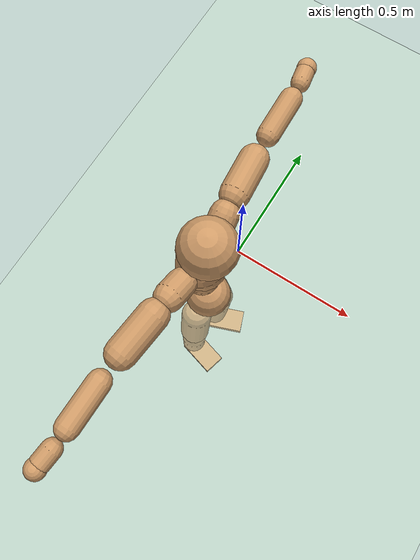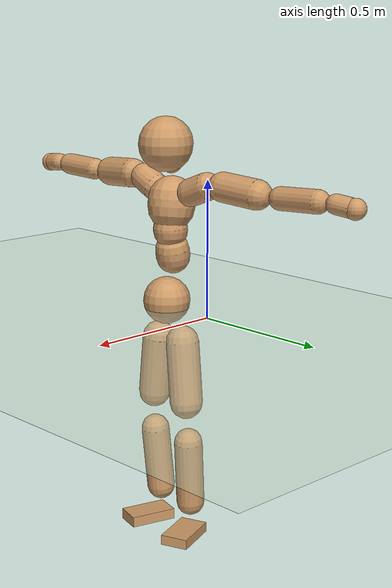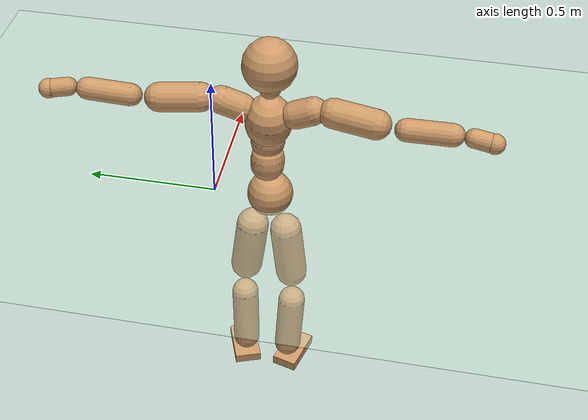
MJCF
<mujoco model="humanoid">
  <compiler coordinate="local"/>
  <default>
    <joint damping="0.0" armature="0.01" stiffness="0.0" limited="true"/>
    <geom conaffinity="1" condim="3" contype="7" margin="0.001" rgba="0.8 0.6 .4 1"/>
  </default>
  <asset>
    <texture type="skybox" builtin="gradient" rgb1=".4 .5 .6" rgb2="0 0 0" width="100" height="100"/>
    <texture builtin="flat" height="1278" mark="cross" markrgb="1 1 1" name="texgeom" random="0.01" rgb1="0.8 0.6 0.4" rgb2="0.8 0.6 0.4" type="cube" width="127"/>
    <texture builtin="checker" height="100" name="texplane" rgb1="0 0 0" rgb2="0.8 0.8 0.8" type="2d" width="100"/>
    <material name="MatPlane" reflectance="0.5" shininess="1" specular="1" texrepeat="60 60" texture="texplane"/>
    <material name="geom" texture="texgeom" texuniform="true"/>
  </asset>
  <worldbody>
    <light cutoff="100" diffuse="1 1 1" dir="-0 0 -1.3" directional="true" exponent="1" pos="0 0 1.3" specular=".1 .1 .1"/>
    <geom conaffinity="1" condim="3" name="floor" pos="0 0 0" rgba="0.8 0.9 0.8 1" size="100 100 .2" type="plane" material="MatPlane"/>
    <body name="Pelvis" pos="-0.0037 -0.2189 0.0272">
      <freejoint name="Pelvis"/>
      <geom type="sphere" contype="1" conaffinity="1" density="500" size="0.0880" pos="0.0000 0.0000 0.0000" name="Pelvis"/>
      <body name="L_Hip" pos="-0.0207 0.056 -0.0765">
        <joint name="L_Hip_x" type="hinge" pos="0 0 0" axis="1 0 0" stiffness="800" damping="80" armature="0.02" range="-180.0000 180.0000"/>
        <joint name="L_Hip_y" type="hinge" pos="0 0 0" axis="0 1 0" stiffness="800" damping="80" armature="0.02" range="-180.0000 180.0000"/>
        <joint name="L_Hip_z" type="hinge" pos="0 0 0" axis="0 0 1" stiffness="800" damping="80" armature="0.02" range="-180.0000 180.0000"/>
        <geom type="capsule" contype="1" conaffinity="1" density="500" fromto="0.0025 0.0095 -0.0766 0.0102 0.0381 -0.3065" size="0.0621" name="L_Hip"/>
        <body name="L_Knee" pos="0.0127 0.0477 -0.3831">
          <joint name="L_Knee_x" type="hinge" pos="0 0 0" axis="1 0 0" stiffness="800" damping="80" armature="0.02" range="-180.0000 180.0000"/>
          <joint name="L_Knee_y" type="hinge" pos="0 0 0" axis="0 1 0" stiffness="800" damping="80" armature="0.02" range="-180.0000 180.0000"/>
          <joint name="L_Knee_z" type="hinge" pos="0 0 0" axis="0 0 1" stiffness="800" damping="80" armature="0.02" range="-180.0000 180.0000"/>
          <geom type="capsule" contype="1" conaffinity="1" density="500" fromto="-0.0066 -0.0026 -0.0837 -0.0263 -0.0106 -0.3348" size="0.0535" name="L_Knee"/>
          <body name="L_Ankle" pos="-0.0328 -0.0132 -0.4185">
            <joint name="L_Ankle_x" type="hinge" pos="0 0 0" axis="1 0 0" stiffness="800" damping="80" armature="0.02" range="-180.0000 180.0000"/>
            <joint name="L_Ankle_y" type="hinge" pos="0 0 0" axis="0 1 0" stiffness="800" damping="80" armature="0.02" range="-180.0000 180.0000"/>
            <joint name="L_Ankle_z" type="hinge" pos="0 0 0" axis="0 0 1" stiffness="800" damping="80" armature="0.02" range="-180.0000 180.0000"/>
            <geom type="box" contype="1" conaffinity="1" density="500" pos="0.0596 0.0223 -0.0298" size="0.0889 0.0532 0.0192" quat="0.9840 0.0000 0.0000 0.1782" name="L_Ankle"/>
            <body name="L_Toe" pos="0.1192 0.0446 -0.0596">
              <joint name="L_Toe_x" type="hinge" pos="0 0 0" axis="1 0 0" stiffness="500" damping="50" armature="0.02" range="-180.0000 180.0000"/>
              <joint name="L_Toe_y" type="hinge" pos="0 0 0" axis="0 1 0" stiffness="500" damping="50" armature="0.02" range="-180.0000 180.0000"/>
              <joint name="L_Toe_z" type="hinge" pos="0 0 0" axis="0 0 1" stiffness="500" damping="50" armature="0.02" range="-180.0000 180.0000"/>
              <geom type="box" contype="1" conaffinity="1" density="500" pos="0.0000 0.0000 0.0292" size="0.001 0.0026 0.0009" quat="0.9832 0.0000 0.0000 0.1827" name="L_Toe"/>
            </body>
          </body>
        </body>
      </body>
      <body name="R_Hip" pos="-0.018 -0.0567 -0.0832">
        <joint name="R_Hip_x" type="hinge" pos="0 0 0" axis="1 0 0" stiffness="800" damping="80" armature="0.02" range="-180.0000 180.0000"/>
        <joint name="R_Hip_y" type="hinge" pos="0 0 0" axis="0 1 0" stiffness="800" damping="80" armature="0.02" range="-180.0000 180.0000"/>
        <joint name="R_Hip_z" type="hinge" pos="0 0 0" axis="0 0 1" stiffness="800" damping="80" armature="0.02" range="-180.0000 180.0000"/>
        <geom type="capsule" contype="1" conaffinity="1" density="500" fromto="-0.0003 -0.0088 -0.0751 -0.0013 -0.0350 -0.3005" size="0.061" name="R_Hip"/>
        <body name="R_Knee" pos="-0.0016 -0.0438 -0.3756">
          <joint name="R_Knee_x" type="hinge" pos="0 0 0" axis="1 0 0" stiffness="800" damping="80" armature="0.02" range="-180.0000 180.0000"/>
          <joint name="R_Knee_y" type="hinge" pos="0 0 0" axis="0 1 0" stiffness="800" damping="80" armature="0.02" range="-180.0000 180.0000"/>
          <joint name="R_Knee_z" type="hinge" pos="0 0 0" axis="0 0 1" stiffness="800" damping="80" armature="0.02" range="-180.0000 180.0000"/>
          <geom type="capsule" contype="1" conaffinity="1" density="500" fromto="-0.0063 0.0035 -0.0818 -0.0252 0.0141 -0.3270" size="0.0539" name="R_Knee"/>
          <body name="R_Ankle" pos="-0.0315 0.0177 -0.4088">
            <joint name="R_Ankle_x" type="hinge" pos="0 0 0" axis="1 0 0" stiffness="800" damping="80" armature="0.02" range="-180.0000 180.0000"/>
            <joint name="R_Ankle_y" type="hinge" pos="0 0 0" axis="0 1 0" stiffness="800" damping="80" armature="0.02" range="-180.0000 180.0000"/>
            <joint name="R_Ankle_z" type="hinge" pos="0 0 0" axis="0 0 1" stiffness="800" damping="80" armature="0.02" range="-180.0000 180.0000"/>
            <geom type="box" contype="1" conaffinity="1" density="500" pos="0.0642 -0.0175 -0.0296" size="0.0904 0.0501 0.0204" quat="0.9912 0.0000 0.0000 -0.1324" name="R_Ankle"/>
            <body name="R_Toe" pos="0.1283 -0.0349 -0.0592">
              <joint name="R_Toe_x" type="hinge" pos="0 0 0" axis="1 0 0" stiffness="500" damping="50" armature="0.02" range="-180.0000 180.0000"/>
              <joint name="R_Toe_y" type="hinge" pos="0 0 0" axis="0 1 0" stiffness="500" damping="50" armature="0.02" range="-180.0000 180.0000"/>
              <joint name="R_Toe_z" type="hinge" pos="0 0 0" axis="0 0 1" stiffness="500" damping="50" armature="0.02" range="-180.0000 180.0000"/>
              <geom type="box" contype="1" conaffinity="1" density="500" pos="0.0000 0.0000 0.0301" size="0.0009 0.0025 0.001" quat="0.9924 0.0000 0.0000 -0.1234" name="R_Toe"/>
            </body>
          </body>
        </body>
      </body>
      <body name="Torso" pos="-0.0371 0.0039 0.1119">
        <joint name="Torso_x" type="hinge" pos="0 0 0" axis="1 0 0" stiffness="1000" damping="100" armature="0.02" range="-180.0000 180.0000"/>
        <joint name="Torso_y" type="hinge" pos="0 0 0" axis="0 1 0" stiffness="1000" damping="100" armature="0.02" range="-180.0000 180.0000"/>
        <joint name="Torso_z" type="hinge" pos="0 0 0" axis="0 0 1" stiffness="1000" damping="100" armature="0.02" range="-180.0000 180.0000"/>
        <geom type="capsule" contype="1" conaffinity="1" density="500" fromto="0.0136 0.0021 0.0770 0.0091 0.0014 0.0514" size="0.063333" name="Torso"/>
        <body name="Spine" pos="0.0227 0.0035 0.1284">
          <joint name="Spine_x" type="hinge" pos="0 0 0" axis="1 0 0" stiffness="1000" damping="100" armature="0.02" range="-180.0000 180.0000"/>
          <joint name="Spine_y" type="hinge" pos="0 0 0" axis="0 1 0" stiffness="1000" damping="100" armature="0.02" range="-180.0000 180.0000"/>
          <joint name="Spine_z" type="hinge" pos="0 0 0" axis="0 0 1" stiffness="1000" damping="100" armature="0.02" range="-180.0000 180.0000"/>
          <geom type="capsule" contype="1" conaffinity="1" density="500" fromto="0.0010 -0.0006 0.0316 0.0007 -0.0004 0.0211" size="0.063705" name="Spine"/>
          <body name="Chest" pos="0.0016 -0.001 0.0527">
            <joint name="Chest_x" type="hinge" pos="0 0 0" axis="1 0 0" stiffness="1000" damping="100" armature="0.02" range="-180.0000 180.0000"/>
            <joint name="Chest_y" type="hinge" pos="0 0 0" axis="0 1 0" stiffness="1000" damping="100" armature="0.02" range="-180.0000 180.0000"/>
            <joint name="Chest_z" type="hinge" pos="0 0 0" axis="0 0 1" stiffness="1000" damping="100" armature="0.02" range="-180.0000 180.0000"/>
            <geom type="capsule" contype="1" conaffinity="1" density="500" fromto="-0.0116 -0.0044 0.0825 -0.0078 -0.0030 0.0550" size="0.087141" name="Chest"/>
            <body name="Neck" pos="-0.0257 -0.0125 0.1991">
              <joint name="Neck_x" type="hinge" pos="0 0 0" axis="1 0 0" stiffness="500" damping="50" armature="0.02" range="-180.0000 180.0000"/>
              <joint name="Neck_y" type="hinge" pos="0 0 0" axis="0 1 0" stiffness="500" damping="50" armature="0.02" range="-180.0000 180.0000"/>
              <joint name="Neck_z" type="hinge" pos="0 0 0" axis="0 0 1" stiffness="500" damping="50" armature="0.02" range="-180.0000 180.0000"/>
              <geom type="capsule" contype="1" conaffinity="1" density="500" fromto="0.0090 0.0023 0.0174 0.0360 0.0092 0.0697" size="0.039897" name="Neck"/>
              <body name="Head" pos="0.045 0.0115 0.0871">
                <joint name="Head_x" type="hinge" pos="0 0 0" axis="1 0 0" stiffness="500" damping="50" armature="0.02" range="-180.0000 180.0000"/>
                <joint name="Head_y" type="hinge" pos="0 0 0" axis="0 1 0" stiffness="500" damping="50" armature="0.02" range="-180.0000 180.0000"/>
                <joint name="Head_z" type="hinge" pos="0 0 0" axis="0 0 1" stiffness="500" damping="50" armature="0.02" range="-180.0000 180.0000"/>
                <geom type="sphere" contype="1" conaffinity="1" density="500" size="0.1000" pos="0.0000 0.0000 0.0000" name="Head"/>
              </body>
            </body>
            <body name="L_Thorax" pos="-0.0126 0.0688 0.1081">
              <joint name="L_Thorax_x" type="hinge" pos="0 0 0" axis="1 0 0" stiffness="500" damping="50" armature="0.02" range="-180.0000 180.0000"/>
              <joint name="L_Thorax_y" type="hinge" pos="0 0 0" axis="0 1 0" stiffness="500" damping="50" armature="0.02" range="-180.0000 180.0000"/>
              <joint name="L_Thorax_z" type="hinge" pos="0 0 0" axis="0 0 1" stiffness="500" damping="50" armature="0.02" range="-180.0000 180.0000"/>
              <geom type="capsule" contype="1" conaffinity="1" density="500" fromto="-0.0029 0.0241 0.0096 -0.0116 0.0965 0.0385" size="0.0514" name="L_Thorax"/>
              <body name="L_Shoulder" pos="-0.0145 0.1207 0.0482">
                <joint name="L_Shoulder_x" type="hinge" pos="0 0 0" axis="1 0 0" stiffness="500" damping="50" armature="0.02" range="-720.0000 720.0000"/>
                <joint name="L_Shoulder_y" type="hinge" pos="0 0 0" axis="0 1 0" stiffness="500" damping="50" armature="0.02" range="-720.0000 720.0000"/>
                <joint name="L_Shoulder_z" type="hinge" pos="0 0 0" axis="0 0 1" stiffness="500" damping="50" armature="0.02" range="-720.0000 720.0000"/>
                <geom type="capsule" contype="1" conaffinity="1" density="500" fromto="-0.0048 0.0497 -0.0035 -0.0191 0.1987 -0.0142" size="0.054" name="L_Shoulder"/>
                <body name="L_Elbow" pos="-0.0239 0.2483 -0.0177">
                  <joint name="L_Elbow_x" type="hinge" pos="0 0 0" axis="1 0 0" stiffness="500" damping="50" armature="0.02" range="-720.0000 720.0000"/>
                  <joint name="L_Elbow_y" type="hinge" pos="0 0 0" axis="0 1 0" stiffness="500" damping="50" armature="0.02" range="-720.0000 720.0000"/>
                  <joint name="L_Elbow_z" type="hinge" pos="0 0 0" axis="0 0 1" stiffness="500" damping="50" armature="0.02" range="-720.0000 720.0000"/>
                  <geom type="capsule" contype="1" conaffinity="1" density="500" fromto="-0.0011 0.0536 0.0028 -0.0045 0.2143 0.0113" size="0.0413" name="L_Elbow"/>
                  <body name="L_Wrist" pos="-0.0057 0.2679 0.0142">
                    <joint name="L_Wrist_x" type="hinge" pos="0 0 0" axis="1 0 0" stiffness="300" damping="30" armature="0.02" range="-180.0000 180.0000"/>
                    <joint name="L_Wrist_y" type="hinge" pos="0 0 0" axis="0 1 0" stiffness="300" damping="30" armature="0.02" range="-180.0000 180.0000"/>
                    <joint name="L_Wrist_z" type="hinge" pos="0 0 0" axis="0 0 1" stiffness="300" damping="30" armature="0.02" range="-180.0000 180.0000"/>
                    <geom type="capsule" contype="1" conaffinity="1" density="500" fromto="-0.0032 0.0178 -0.0022 -0.0130 0.0712 -0.0089" size="0.0344" name="L_Wrist"/>
                    <body name="L_Hand" pos="-0.0162 0.089 -0.0111">
                      <joint name="L_Hand_x" type="hinge" pos="0 0 0" axis="1 0 0" stiffness="300" damping="30" armature="0.02" range="-180.0000 180.0000"/>
                      <joint name="L_Hand_y" type="hinge" pos="0 0 0" axis="0 1 0" stiffness="300" damping="30" armature="0.02" range="-180.0000 180.0000"/>
                      <joint name="L_Hand_z" type="hinge" pos="0 0 0" axis="0 0 1" stiffness="300" damping="30" armature="0.02" range="-180.0000 180.0000"/>
                      <geom type="sphere" contype="1" conaffinity="1" density="500" size="0.0363" pos="0.0000 0.0000 0.0000" name="L_Hand"/>
                    </body>
                  </body>
                </body>
              </body>
            </body>
            <body name="R_Thorax" pos="-0.02 -0.0786 0.1051">
              <joint name="R_Thorax_x" type="hinge" pos="0 0 0" axis="1 0 0" stiffness="500" damping="50" armature="0.02" range="-180.0000 180.0000"/>
              <joint name="R_Thorax_y" type="hinge" pos="0 0 0" axis="0 1 0" stiffness="500" damping="50" armature="0.02" range="-180.0000 180.0000"/>
              <joint name="R_Thorax_z" type="hinge" pos="0 0 0" axis="0 0 1" stiffness="500" damping="50" armature="0.02" range="-180.0000 180.0000"/>
              <geom type="capsule" contype="1" conaffinity="1" density="500" fromto="-0.0012 -0.0222 0.0100 -0.0049 -0.0886 0.0402" size="0.0515" name="R_Thorax"/>
              <body name="R_Shoulder" pos="-0.0062 -0.1108 0.0502">
                <joint name="R_Shoulder_x" type="hinge" pos="0 0 0" axis="1 0 0" stiffness="500" damping="50" armature="0.02" range="-720.0000 720.0000"/>
                <joint name="R_Shoulder_y" type="hinge" pos="0 0 0" axis="0 1 0" stiffness="500" damping="50" armature="0.02" range="-720.0000 720.0000"/>
                <joint name="R_Shoulder_z" type="hinge" pos="0 0 0" axis="0 0 1" stiffness="500" damping="50" armature="0.02" range="-720.0000 720.0000"/>
                <geom type="capsule" contype="1" conaffinity="1" density="500" fromto="-0.0064 -0.0511 -0.0039 -0.0255 -0.2042 -0.0154" size="0.0547" name="R_Shoulder"/>
                <body name="R_Elbow" pos="-0.0318 -0.2553 -0.0193">
                  <joint name="R_Elbow_x" type="hinge" pos="0 0 0" axis="1 0 0" stiffness="500" damping="50" armature="0.02" range="-720.0000 720.0000"/>
                  <joint name="R_Elbow_y" type="hinge" pos="0 0 0" axis="0 1 0" stiffness="500" damping="50" armature="0.02" range="-720.0000 720.0000"/>
                  <joint name="R_Elbow_z" type="hinge" pos="0 0 0" axis="0 0 1" stiffness="500" damping="50" armature="0.02" range="-720.0000 720.0000"/>
                  <geom type="capsule" contype="1" conaffinity="1" density="500" fromto="-0.0006 -0.0539 0.0012 -0.0025 -0.2154 0.0048" size="0.0414" name="R_Elbow"/>
                  <body name="R_Wrist" pos="-0.0031 -0.2693 0.006">
                    <joint name="R_Wrist_x" type="hinge" pos="0 0 0" axis="1 0 0" stiffness="300" damping="30" armature="0.02" range="-180.0000 180.0000"/>
                    <joint name="R_Wrist_y" type="hinge" pos="0 0 0" axis="0 1 0" stiffness="300" damping="30" armature="0.02" range="-180.0000 180.0000"/>
                    <joint name="R_Wrist_z" type="hinge" pos="0 0 0" axis="0 0 1" stiffness="300" damping="30" armature="0.02" range="-180.0000 180.0000"/>
                    <geom type="capsule" contype="1" conaffinity="1" density="500" fromto="-0.0021 -0.0180 -0.0018 -0.0086 -0.0718 -0.0071" size="0.0345" name="R_Wrist"/>
                    <body name="R_Hand" pos="-0.0107 -0.0898 -0.0089">
                      <joint name="R_Hand_x" type="hinge" pos="0 0 0" axis="1 0 0" stiffness="300" damping="30" armature="0.02" range="-180.0000 180.0000"/>
                      <joint name="R_Hand_y" type="hinge" pos="0 0 0" axis="0 1 0" stiffness="300" damping="30" armature="0.02" range="-180.0000 180.0000"/>
                      <joint name="R_Hand_z" type="hinge" pos="0 0 0" axis="0 0 1" stiffness="300" damping="30" armature="0.02" range="-180.0000 180.0000"/>
                      <geom type="sphere" contype="1" conaffinity="1" density="500" size="0.0363" pos="0.0000 0.0000 0.0000" name="R_Hand"/>
                    </body>
                  </body>
                </body>
              </body>
            </body>
          </body>
        </body>
      </body>
    </body>
  </worldbody>
  <actuator>
    <motor name="L_Hip_x" joint="L_Hip_x" gear="500"/>
    <motor name="L_Hip_y" joint="L_Hip_y" gear="500"/>
    <motor name="L_Hip_z" joint="L_Hip_z" gear="500"/>
    <motor name="L_Knee_x" joint="L_Knee_x" gear="500"/>
    <motor name="L_Knee_y" joint="L_Knee_y" gear="500"/>
    <motor name="L_Knee_z" joint="L_Knee_z" gear="500"/>
    <motor name="L_Ankle_x" joint="L_Ankle_x" gear="500"/>
    <motor name="L_Ankle_y" joint="L_Ankle_y" gear="500"/>
    <motor name="L_Ankle_z" joint="L_Ankle_z" gear="500"/>
    <motor name="L_Toe_x" joint="L_Toe_x" gear="500"/>
    <motor name="L_Toe_y" joint="L_Toe_y" gear="500"/>
    <motor name="L_Toe_z" joint="L_Toe_z" gear="500"/>
    <motor name="R_Hip_x" joint="R_Hip_x" gear="500"/>
    <motor name="R_Hip_y" joint="R_Hip_y" gear="500"/>
    <motor name="R_Hip_z" joint="R_Hip_z" gear="500"/>
    <motor name="R_Knee_x" joint="R_Knee_x" gear="500"/>
    <motor name="R_Knee_y" joint="R_Knee_y" gear="500"/>
    <motor name="R_Knee_z" joint="R_Knee_z" gear="500"/>
    <motor name="R_Ankle_x" joint="R_Ankle_x" gear="500"/>
    <motor name="R_Ankle_y" joint="R_Ankle_y" gear="500"/>
    <motor name="R_Ankle_z" joint="R_Ankle_z" gear="500"/>
    <motor name="R_Toe_x" joint="R_Toe_x" gear="500"/>
    <motor name="R_Toe_y" joint="R_Toe_y" gear="500"/>
    <motor name="R_Toe_z" joint="R_Toe_z" gear="500"/>
    <motor name="Torso_x" joint="Torso_x" gear="500"/>
    <motor name="Torso_y" joint="Torso_y" gear="500"/>
    <motor name="Torso_z" joint="Torso_z" gear="500"/>
    <motor name="Spine_x" joint="Spine_x" gear="500"/>
    <motor name="Spine_y" joint="Spine_y" gear="500"/>
    <motor name="Spine_z" joint="Spine_z" gear="500"/>
    <motor name="Chest_x" joint="Chest_x" gear="500"/>
    <motor name="Chest_y" joint="Chest_y" gear="500"/>
    <motor name="Chest_z" joint="Chest_z" gear="500"/>
    <motor name="Neck_x" joint="Neck_x" gear="500"/>
    <motor name="Neck_y" joint="Neck_y" gear="500"/>
    <motor name="Neck_z" joint="Neck_z" gear="500"/>
    <motor name="Head_x" joint="Head_x" gear="500"/>
    <motor name="Head_y" joint="Head_y" gear="500"/>
    <motor name="Head_z" joint="Head_z" gear="500"/>
    <motor name="L_Thorax_x" joint="L_Thorax_x" gear="500"/>
    <motor name="L_Thorax_y" joint="L_Thorax_y" gear="500"/>
    <motor name="L_Thorax_z" joint="L_Thorax_z" gear="500"/>
    <motor name="L_Shoulder_x" joint="L_Shoulder_x" gear="500"/>
    <motor name="L_Shoulder_y" joint="L_Shoulder_y" gear="500"/>
    <motor name="L_Shoulder_z" joint="L_Shoulder_z" gear="500"/>
    <motor name="L_Elbow_x" joint="L_Elbow_x" gear="500"/>
    <motor name="L_Elbow_y" joint="L_Elbow_y" gear="500"/>
    <motor name="L_Elbow_z" joint="L_Elbow_z" gear="500"/>
    <motor name="L_Wrist_x" joint="L_Wrist_x" gear="500"/>
    <motor name="L_Wrist_y" joint="L_Wrist_y" gear="500"/>
    <motor name="L_Wrist_z" joint="L_Wrist_z" gear="500"/>
    <motor name="L_Hand_x" joint="L_Hand_x" gear="500"/>
    <motor name="L_Hand_y" joint="L_Hand_y" gear="500"/>
    <motor name="L_Hand_z" joint="L_Hand_z" gear="500"/>
    <motor name="R_Thorax_x" joint="R_Thorax_x" gear="500"/>
    <motor name="R_Thorax_y" joint="R_Thorax_y" gear="500"/>
    <motor name="R_Thorax_z" joint="R_Thorax_z" gear="500"/>
    <motor name="R_Shoulder_x" joint="R_Shoulder_x" gear="500"/>
    <motor name="R_Shoulder_y" joint="R_Shoulder_y" gear="500"/>
    <motor name="R_Shoulder_z" joint="R_Shoulder_z" gear="500"/>
    <motor name="R_Elbow_x" joint="R_Elbow_x" gear="500"/>
    <motor name="R_Elbow_y" joint="R_Elbow_y" gear="500"/>
    <motor name="R_Elbow_z" joint="R_Elbow_z" gear="500"/>
    <motor name="R_Wrist_x" joint="R_Wrist_x" gear="500"/>
    <motor name="R_Wrist_y" joint="R_Wrist_y" gear="500"/>
    <motor name="R_Wrist_z" joint="R_Wrist_z" gear="500"/>
    <motor name="R_Hand_x" joint="R_Hand_x" gear="500"/>
    <motor name="R_Hand_y" joint="R_Hand_y" gear="500"/>
    <motor name="R_Hand_z" joint="R_Hand_z" gear="500"/>
  </actuator>
  <contact>
    <exclude body1="Torso" body2="Chest"/>
    <exclude body1="Head" body2="Chest"/>
    <exclude body1="R_Knee" body2="R_Toe"/>
    <exclude body1="R_Knee" body2="L_Ankle"/>
    <exclude body1="R_Knee" body2="L_Toe"/>
    <exclude body1="L_Knee" body2="L_Toe"/>
    <exclude body1="L_Knee" body2="R_Ankle"/>
    <exclude body1="L_Knee" body2="R_Toe"/>
    <exclude body1="L_Shoulder" body2="Chest"/>
    <exclude body1="R_Shoulder" body2="Chest"/>
  </contact>
  <sensor/>
  <size njmax="700" nconmax="700"/>
</mujoco>
